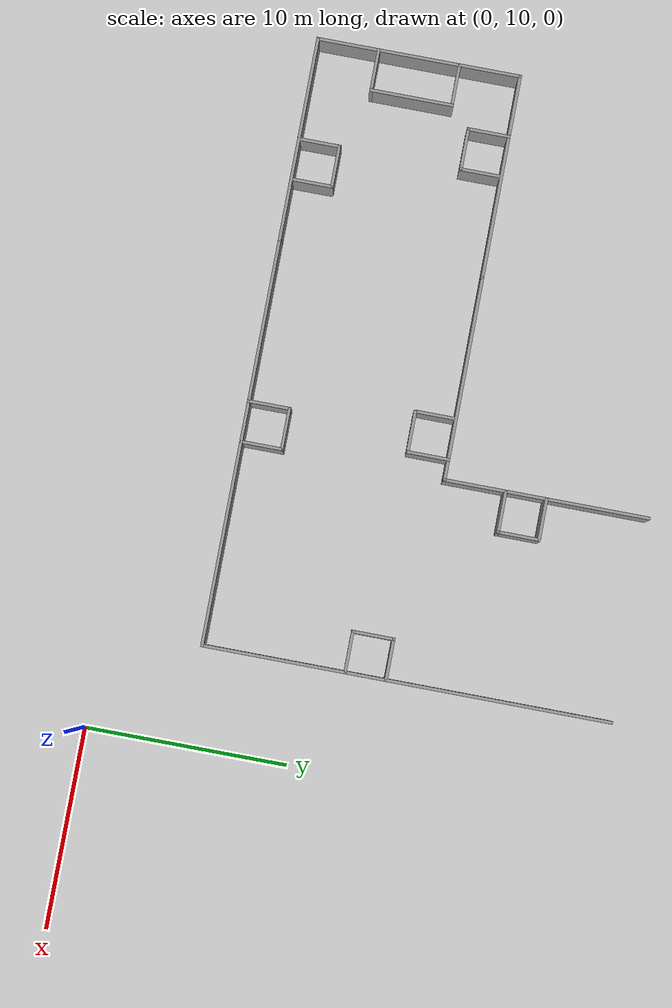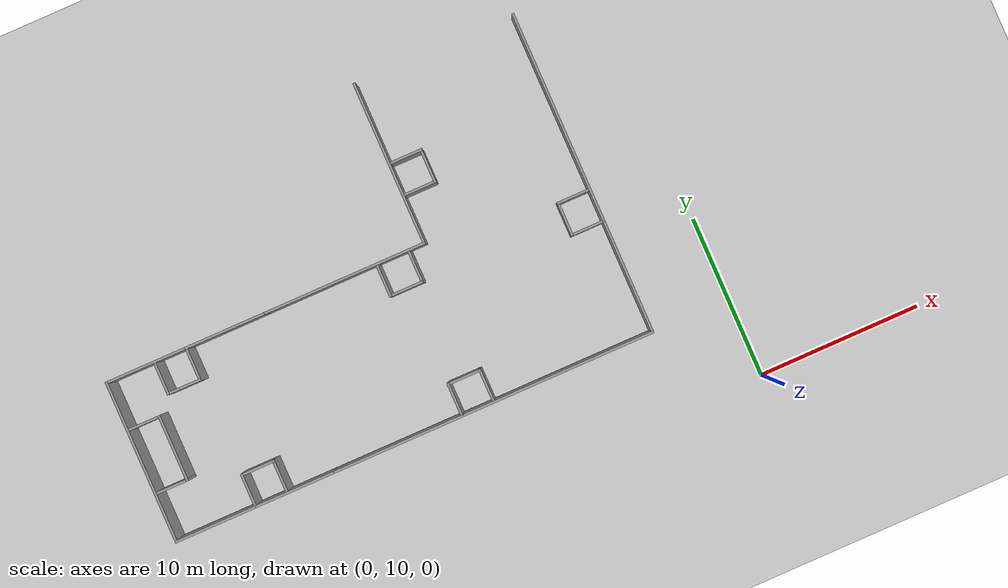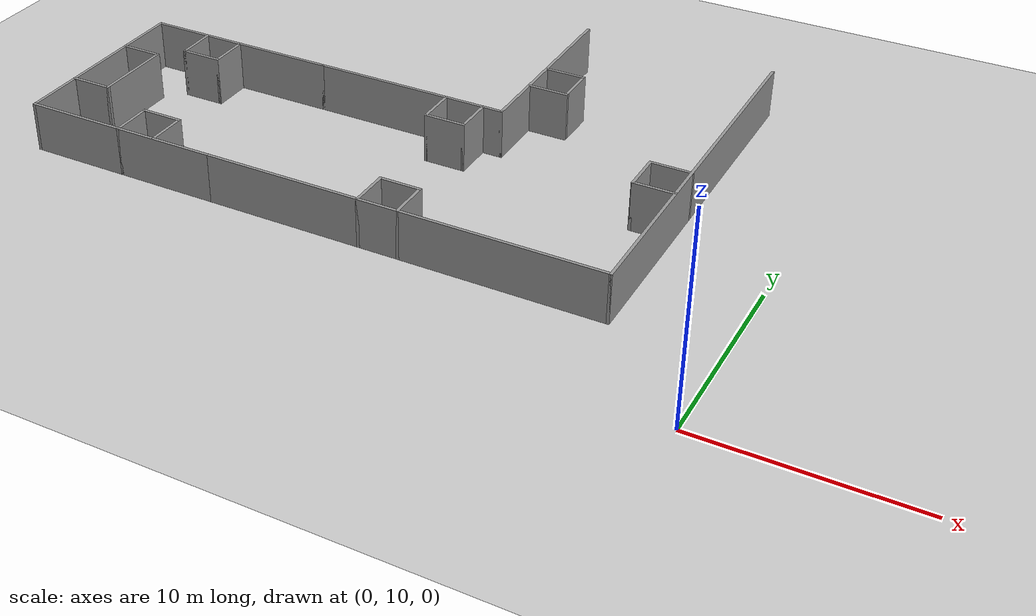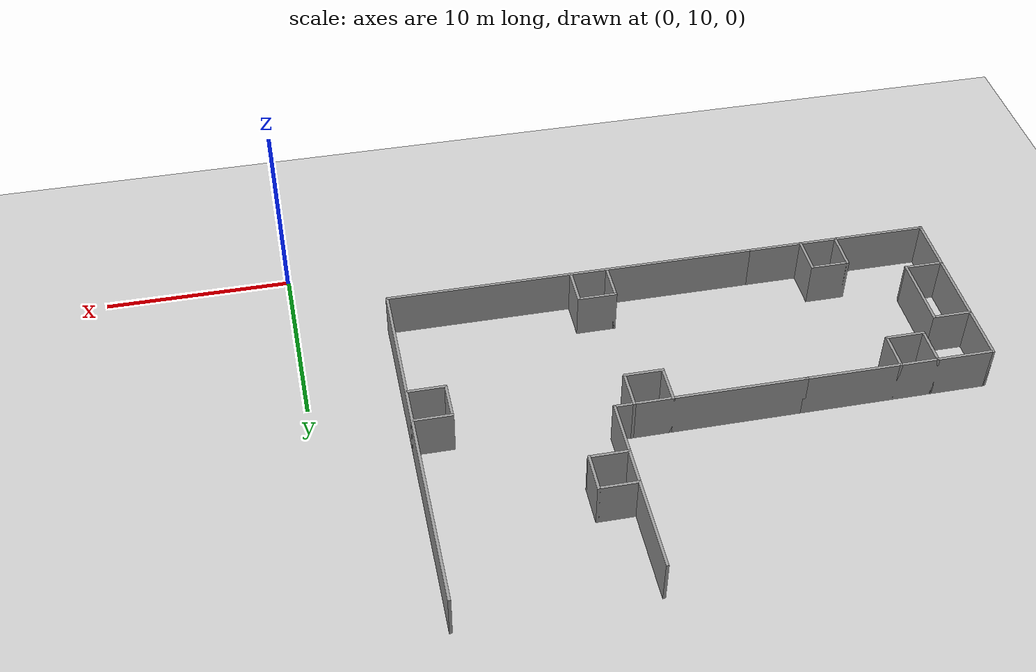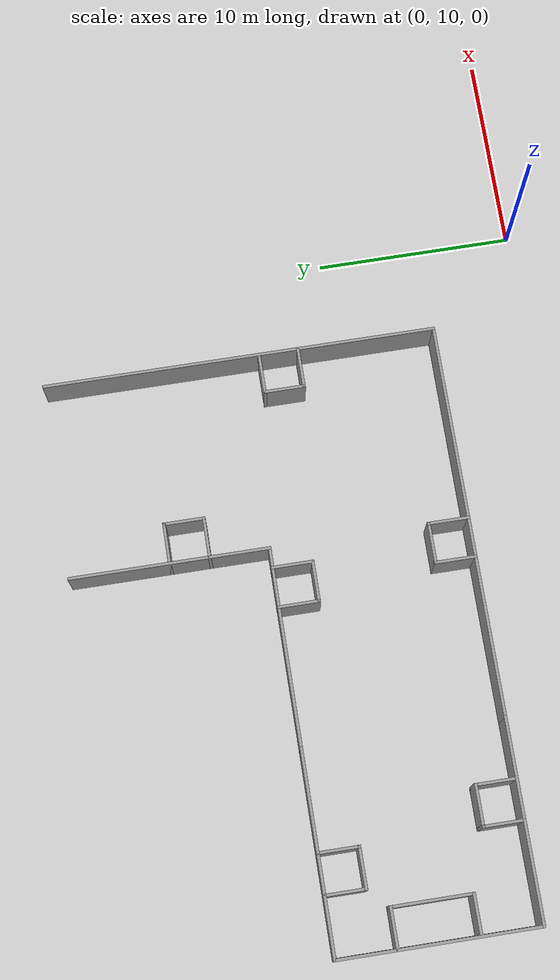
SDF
<sdf version="1.6">
 <world name="default">
  <model name="ground_plane">
   <static>1</static>
   <link name="link">
    <collision name="collision">
     <geometry><plane><normal>0 0 1</normal><size>100 100</size></plane></geometry>
     <surface><friction><ode><mu>100</mu><mu2>50</mu2></ode></friction></surface>
    </collision>
    <visual name="visual">
     <cast_shadows>0</cast_shadows>
     <geometry><plane><normal>0 0 1</normal><size>100 100</size></plane></geometry>
     <material>
      <script><uri>file://media/materials/scripts/gazebo.material</uri><name>Gazebo/Grey</name></script>
     </material>
    </visual>
   </link>
  </model>
  <model name="part_l_4">
   <link name="Wall_27">
    <pose>-0.000179 -10 0 0 -0 0</pose>
    <visual name="Wall_27_Visual">
     <pose>0 0 1.25 0 -0 0</pose>
     <geometry><box><size>20.15 0.15 2.5</size></box></geometry>
     <material>
      <script><uri>file://media/materials/scripts/gazebo.material</uri><name>Gazebo/Grey</name></script>
      <ambient>1 1 1 1</ambient>
      <diffuse>0.7 0.7 0.7 1</diffuse>
      <specular>0.01 0.01 0.01 1</specular>
      <emissive>0 0 0 1</emissive>
     </material>
    </visual>
    <collision name="Wall_27_Collision">
     <pose>0 0 1.25 0 -0 0</pose>
     <geometry><box><size>20.15 0.15 2.5</size></box></geometry>
     <surface>
      <friction>
       <ode><mu>1</mu><mu2>1</mu2><fdir1>0 0 0</fdir1><slip1>0</slip1><slip2>0</slip2></ode>
       <torsional>
        <coefficient>1</coefficient>
        <patch_radius>0</patch_radius>
        <surface_radius>0</surface_radius>
        <use_patch_radius>1</use_patch_radius>
        <ode><slip>0</slip></ode>
       </torsional>
      </friction>
      <bounce><restitution_coefficient>0</restitution_coefficient><threshold>1e+06</threshold></bounce>
      <contact>
       <collide_without_contact>0</collide_without_contact>
       <collide_without_contact_bitmask>1</collide_without_contact_bitmask>
       <collide_bitmask>1</collide_bitmask>
       <ode>
        <soft_cfm>0</soft_cfm>
        <soft_erp>0.2</soft_erp>
        <kp>1e+13</kp>
        <kd>1</kd>
        <max_vel>0.01</max_vel>
        <min_depth>0</min_depth>
       </ode>
       <bullet>
        <split_impulse>1</split_impulse>
        <split_impulse_penetration_threshold>-0.01</split_impulse_penetration_threshold>
        <soft_cfm>0</soft_cfm>
        <soft_erp>0.2</soft_erp>
        <kp>1e+13</kp>
        <kd>1</kd>
       </bullet>
      </contact>
     </surface>
    </collision>
   </link>
   <link name="Wall_28">
    <pose>9.99982 0 0 0 -0 1.5708</pose>
    <visual name="Wall_28_Visual">
     <pose>0 0 1.25 0 -0 0</pose>
     <geometry><box><size>20.15 0.15 2.5</size></box></geometry>
     <material>
      <script><uri>file://media/materials/scripts/gazebo.material</uri><name>Gazebo/Grey</name></script>
      <ambient>1 1 1 1</ambient>
      <diffuse>0.7 0.7 0.7 1</diffuse>
      <specular>0.01 0.01 0.01 1</specular>
      <emissive>0 0 0 1</emissive>
     </material>
    </visual>
    <collision name="Wall_28_Collision">
     <pose>0 0 1.25 0 -0 0</pose>
     <geometry><box><size>20.15 0.15 2.5</size></box></geometry>
     <surface>
      <friction>
       <ode><mu>1</mu><mu2>1</mu2><fdir1>0 0 0</fdir1><slip1>0</slip1><slip2>0</slip2></ode>
       <torsional>
        <coefficient>1</coefficient>
        <patch_radius>0</patch_radius>
        <surface_radius>0</surface_radius>
        <use_patch_radius>1</use_patch_radius>
        <ode><slip>0</slip></ode>
       </torsional>
      </friction>
      <bounce><restitution_coefficient>0</restitution_coefficient><threshold>1e+06</threshold></bounce>
      <contact>
       <collide_without_contact>0</collide_without_contact>
       <collide_without_contact_bitmask>1</collide_without_contact_bitmask>
       <collide_bitmask>1</collide_bitmask>
       <ode>
        <soft_cfm>0</soft_cfm>
        <soft_erp>0.2</soft_erp>
        <kp>1e+13</kp>
        <kd>1</kd>
        <max_vel>0.01</max_vel>
        <min_depth>0</min_depth>
       </ode>
       <bullet>
        <split_impulse>1</split_impulse>
        <split_impulse_penetration_threshold>-0.01</split_impulse_penetration_threshold>
        <soft_cfm>0</soft_cfm>
        <soft_erp>0.2</soft_erp>
        <kp>1e+13</kp>
        <kd>1</kd>
       </bullet>
      </contact>
     </surface>
    </collision>
   </link>
   <link name="Wall_30">
    <pose>-5.00018 0 0 0 -0 0</pose>
    <visual name="Wall_30_Visual">
     <pose>0 0 1.25 0 -0 0</pose>
     <geometry><box><size>10.15 0.15 2.5</size></box></geometry>
     <material>
      <script><uri>file://media/materials/scripts/gazebo.material</uri><name>Gazebo/Grey</name></script>
      <ambient>1 1 1 1</ambient>
      <diffuse>0.7 0.7 0.7 1</diffuse>
      <specular>0.01 0.01 0.01 1</specular>
      <emissive>0 0 0 1</emissive>
     </material>
    </visual>
    <collision name="Wall_30_Collision">
     <pose>0 0 1.25 0 -0 0</pose>
     <geometry><box><size>10.15 0.15 2.5</size></box></geometry>
     <surface>
      <friction>
       <ode><mu>1</mu><mu2>1</mu2><fdir1>0 0 0</fdir1><slip1>0</slip1><slip2>0</slip2></ode>
       <torsional>
        <coefficient>1</coefficient>
        <patch_radius>0</patch_radius>
        <surface_radius>0</surface_radius>
        <use_patch_radius>1</use_patch_radius>
        <ode><slip>0</slip></ode>
       </torsional>
      </friction>
      <bounce><restitution_coefficient>0</restitution_coefficient><threshold>1e+06</threshold></bounce>
      <contact>
       <collide_without_contact>0</collide_without_contact>
       <collide_without_contact_bitmask>1</collide_without_contact_bitmask>
       <collide_bitmask>1</collide_bitmask>
       <ode>
        <soft_cfm>0</soft_cfm>
        <soft_erp>0.2</soft_erp>
        <kp>1e+13</kp>
        <kd>1</kd>
        <max_vel>0.01</max_vel>
        <min_depth>0</min_depth>
       </ode>
       <bullet>
        <split_impulse>1</split_impulse>
        <split_impulse_penetration_threshold>-0.01</split_impulse_penetration_threshold>
        <soft_cfm>0</soft_cfm>
        <soft_erp>0.2</soft_erp>
        <kp>1e+13</kp>
        <kd>1</kd>
       </bullet>
      </contact>
     </surface>
    </collision>
   </link>
   <link name="Wall_31">
    <pose>-0.000179 5 0 0 -0 1.5708</pose>
    <visual name="Wall_31_Visual">
     <pose>0 0 1.25 0 -0 0</pose>
     <geometry><box><size>10.15 0.15 2.5</size></box></geometry>
     <material>
      <script><uri>file://media/materials/scripts/gazebo.material</uri><name>Gazebo/Grey</name></script>
      <ambient>1 1 1 1</ambient>
      <diffuse>0.7 0.7 0.7 1</diffuse>
      <specular>0.01 0.01 0.01 1</specular>
      <emissive>0 0 0 1</emissive>
     </material>
    </visual>
    <collision name="Wall_31_Collision">
     <pose>0 0 1.25 0 -0 0</pose>
     <geometry><box><size>10.15 0.15 2.5</size></box></geometry>
     <surface>
      <friction>
       <ode><mu>1</mu><mu2>1</mu2><fdir1>0 0 0</fdir1><slip1>0</slip1><slip2>0</slip2></ode>
       <torsional>
        <coefficient>1</coefficient>
        <patch_radius>0</patch_radius>
        <surface_radius>0</surface_radius>
        <use_patch_radius>1</use_patch_radius>
        <ode><slip>0</slip></ode>
       </torsional>
      </friction>
      <bounce><restitution_coefficient>0</restitution_coefficient><threshold>1e+06</threshold></bounce>
      <contact>
       <collide_without_contact>0</collide_without_contact>
       <collide_without_contact_bitmask>1</collide_without_contact_bitmask>
       <collide_bitmask>1</collide_bitmask>
       <ode>
        <soft_cfm>0</soft_cfm>
        <soft_erp>0.2</soft_erp>
        <kp>1e+13</kp>
        <kd>1</kd>
        <max_vel>0.01</max_vel>
        <min_depth>0</min_depth>
       </ode>
       <bullet>
        <split_impulse>1</split_impulse>
        <split_impulse_penetration_threshold>-0.01</split_impulse_penetration_threshold>
        <soft_cfm>0</soft_cfm>
        <soft_erp>0.2</soft_erp>
        <kp>1e+13</kp>
        <kd>1</kd>
       </bullet>
      </contact>
     </surface>
    </collision>
   </link>
   <link name="Wall_33">
    <pose>-2.00018 -9 0 0 -0 1.5708</pose>
    <visual name="Wall_33_Visual">
     <pose>0 0 1.25 0 -0 0</pose>
     <geometry><box><size>2.15 0.15 2.5</size></box></geometry>
     <material>
      <script><uri>file://media/materials/scripts/gazebo.material</uri><name>Gazebo/Grey</name></script>
      <ambient>1 1 1 1</ambient>
      <diffuse>0.7 0.7 0.7 1</diffuse>
      <specular>0.01 0.01 0.01 1</specular>
      <emissive>0 0 0 1</emissive>
     </material>
    </visual>
    <collision name="Wall_33_Collision">
     <pose>0 0 1.25 0 -0 0</pose>
     <geometry><box><size>2.15 0.15 2.5</size></box></geometry>
     <surface>
      <friction>
       <ode><mu>1</mu><mu2>1</mu2><fdir1>0 0 0</fdir1><slip1>0</slip1><slip2>0</slip2></ode>
       <torsional>
        <coefficient>1</coefficient>
        <patch_radius>0</patch_radius>
        <surface_radius>0</surface_radius>
        <use_patch_radius>1</use_patch_radius>
        <ode><slip>0</slip></ode>
       </torsional>
      </friction>
      <bounce><restitution_coefficient>0</restitution_coefficient><threshold>1e+06</threshold></bounce>
      <contact>
       <collide_without_contact>0</collide_without_contact>
       <collide_without_contact_bitmask>1</collide_without_contact_bitmask>
       <collide_bitmask>1</collide_bitmask>
       <ode>
        <soft_cfm>0</soft_cfm>
        <soft_erp>0.2</soft_erp>
        <kp>1e+13</kp>
        <kd>1</kd>
        <max_vel>0.01</max_vel>
        <min_depth>0</min_depth>
       </ode>
       <bullet>
        <split_impulse>1</split_impulse>
        <split_impulse_penetration_threshold>-0.01</split_impulse_penetration_threshold>
        <soft_cfm>0</soft_cfm>
        <soft_erp>0.2</soft_erp>
        <kp>1e+13</kp>
        <kd>1</kd>
       </bullet>
      </contact>
     </surface>
    </collision>
   </link>
   <link name="Wall_34">
    <pose>-1.00018 -8 0 0 -0 0</pose>
    <visual name="Wall_34_Visual">
     <pose>0 0 1.25 0 -0 0</pose>
     <geometry><box><size>2.15 0.15 2.5</size></box></geometry>
     <material>
      <script><uri>file://media/materials/scripts/gazebo.material</uri><name>Gazebo/Grey</name></script>
      <ambient>1 1 1 1</ambient>
      <diffuse>0.7 0.7 0.7 1</diffuse>
      <specular>0.01 0.01 0.01 1</specular>
      <emissive>0 0 0 1</emissive>
     </material>
    </visual>
    <collision name="Wall_34_Collision">
     <pose>0 0 1.25 0 -0 0</pose>
     <geometry><box><size>2.15 0.15 2.5</size></box></geometry>
     <surface>
      <friction>
       <ode><mu>1</mu><mu2>1</mu2><fdir1>0 0 0</fdir1><slip1>0</slip1><slip2>0</slip2></ode>
       <torsional>
        <coefficient>1</coefficient>
        <patch_radius>0</patch_radius>
        <surface_radius>0</surface_radius>
        <use_patch_radius>1</use_patch_radius>
        <ode><slip>0</slip></ode>
       </torsional>
      </friction>
      <bounce><restitution_coefficient>0</restitution_coefficient><threshold>1e+06</threshold></bounce>
      <contact>
       <collide_without_contact>0</collide_without_contact>
       <collide_without_contact_bitmask>1</collide_without_contact_bitmask>
       <collide_bitmask>1</collide_bitmask>
       <ode>
        <soft_cfm>0</soft_cfm>
        <soft_erp>0.2</soft_erp>
        <kp>1e+13</kp>
        <kd>1</kd>
        <max_vel>0.01</max_vel>
        <min_depth>0</min_depth>
       </ode>
       <bullet>
        <split_impulse>1</split_impulse>
        <split_impulse_penetration_threshold>-0.01</split_impulse_penetration_threshold>
        <soft_cfm>0</soft_cfm>
        <soft_erp>0.2</soft_erp>
        <kp>1e+13</kp>
        <kd>1</kd>
       </bullet>
      </contact>
     </surface>
    </collision>
   </link>
   <link name="Wall_35">
    <pose>-0.000179 -9 0 0 0 -1.5708</pose>
    <visual name="Wall_35_Visual">
     <pose>0 0 1.25 0 -0 0</pose>
     <geometry><box><size>2.15 0.15 2.5</size></box></geometry>
     <material>
      <script><uri>file://media/materials/scripts/gazebo.material</uri><name>Gazebo/Grey</name></script>
      <ambient>1 1 1 1</ambient>
      <diffuse>0.7 0.7 0.7 1</diffuse>
      <specular>0.01 0.01 0.01 1</specular>
      <emissive>0 0 0 1</emissive>
     </material>
    </visual>
    <collision name="Wall_35_Collision">
     <pose>0 0 1.25 0 -0 0</pose>
     <geometry><box><size>2.15 0.15 2.5</size></box></geometry>
     <surface>
      <friction>
       <ode><mu>1</mu><mu2>1</mu2><fdir1>0 0 0</fdir1><slip1>0</slip1><slip2>0</slip2></ode>
       <torsional>
        <coefficient>1</coefficient>
        <patch_radius>0</patch_radius>
        <surface_radius>0</surface_radius>
        <use_patch_radius>1</use_patch_radius>
        <ode><slip>0</slip></ode>
       </torsional>
      </friction>
      <bounce><restitution_coefficient>0</restitution_coefficient><threshold>1e+06</threshold></bounce>
      <contact>
       <collide_without_contact>0</collide_without_contact>
       <collide_without_contact_bitmask>1</collide_without_contact_bitmask>
       <collide_bitmask>1</collide_bitmask>
       <ode>
        <soft_cfm>0</soft_cfm>
        <soft_erp>0.2</soft_erp>
        <kp>1e+13</kp>
        <kd>1</kd>
        <max_vel>0.01</max_vel>
        <min_depth>0</min_depth>
       </ode>
       <bullet>
        <split_impulse>1</split_impulse>
        <split_impulse_penetration_threshold>-0.01</split_impulse_penetration_threshold>
        <soft_cfm>0</soft_cfm>
        <soft_erp>0.2</soft_erp>
        <kp>1e+13</kp>
        <kd>1</kd>
       </bullet>
      </contact>
     </surface>
    </collision>
   </link>
   <link name="Wall_37">
    <pose>8.99982 -1 0 0 -0 3.14159</pose>
    <visual name="Wall_37_Visual">
     <pose>0 0 1.25 0 -0 0</pose>
     <geometry><box><size>2.15072 0.15 2.5</size></box></geometry>
     <material>
      <script><uri>file://media/materials/scripts/gazebo.material</uri><name>Gazebo/Grey</name></script>
      <ambient>1 1 1 1</ambient>
      <diffuse>0.7 0.7 0.7 1</diffuse>
      <specular>0.01 0.01 0.01 1</specular>
      <emissive>0 0 0 1</emissive>
     </material>
    </visual>
    <collision name="Wall_37_Collision">
     <pose>0 0 1.25 0 -0 0</pose>
     <geometry><box><size>2.15072 0.15 2.5</size></box></geometry>
     <surface>
      <friction>
       <ode><mu>1</mu><mu2>1</mu2><fdir1>0 0 0</fdir1><slip1>0</slip1><slip2>0</slip2></ode>
       <torsional>
        <coefficient>1</coefficient>
        <patch_radius>0</patch_radius>
        <surface_radius>0</surface_radius>
        <use_patch_radius>1</use_patch_radius>
        <ode><slip>0</slip></ode>
       </torsional>
      </friction>
      <bounce><restitution_coefficient>0</restitution_coefficient><threshold>1e+06</threshold></bounce>
      <contact>
       <collide_without_contact>0</collide_without_contact>
       <collide_without_contact_bitmask>1</collide_without_contact_bitmask>
       <collide_bitmask>1</collide_bitmask>
       <ode>
        <soft_cfm>0</soft_cfm>
        <soft_erp>0.2</soft_erp>
        <kp>1e+13</kp>
        <kd>1</kd>
        <max_vel>0.01</max_vel>
        <min_depth>0</min_depth>
       </ode>
       <bullet>
        <split_impulse>1</split_impulse>
        <split_impulse_penetration_threshold>-0.01</split_impulse_penetration_threshold>
        <soft_cfm>0</soft_cfm>
        <soft_erp>0.2</soft_erp>
        <kp>1e+13</kp>
        <kd>1</kd>
       </bullet>
      </contact>
     </surface>
    </collision>
   </link>
   <link name="Wall_38">
    <pose>7.99982 -2 0 0 0 -1.5708</pose>
    <visual name="Wall_38_Visual">
     <pose>0 0 1.25 0 -0 0</pose>
     <geometry><box><size>2.15 0.15 2.5</size></box></geometry>
     <material>
      <script><uri>file://media/materials/scripts/gazebo.material</uri><name>Gazebo/Grey</name></script>
      <ambient>1 1 1 1</ambient>
      <diffuse>0.7 0.7 0.7 1</diffuse>
      <specular>0.01 0.01 0.01 1</specular>
      <emissive>0 0 0 1</emissive>
     </material>
    </visual>
    <collision name="Wall_38_Collision">
     <pose>0 0 1.25 0 -0 0</pose>
     <geometry><box><size>2.15 0.15 2.5</size></box></geometry>
     <surface>
      <friction>
       <ode><mu>1</mu><mu2>1</mu2><fdir1>0 0 0</fdir1><slip1>0</slip1><slip2>0</slip2></ode>
       <torsional>
        <coefficient>1</coefficient>
        <patch_radius>0</patch_radius>
        <surface_radius>0</surface_radius>
        <use_patch_radius>1</use_patch_radius>
        <ode><slip>0</slip></ode>
       </torsional>
      </friction>
      <bounce><restitution_coefficient>0</restitution_coefficient><threshold>1e+06</threshold></bounce>
      <contact>
       <collide_without_contact>0</collide_without_contact>
       <collide_without_contact_bitmask>1</collide_without_contact_bitmask>
       <collide_bitmask>1</collide_bitmask>
       <ode>
        <soft_cfm>0</soft_cfm>
        <soft_erp>0.2</soft_erp>
        <kp>1e+13</kp>
        <kd>1</kd>
        <max_vel>0.01</max_vel>
        <min_depth>0</min_depth>
       </ode>
       <bullet>
        <split_impulse>1</split_impulse>
        <split_impulse_penetration_threshold>-0.01</split_impulse_penetration_threshold>
        <soft_cfm>0</soft_cfm>
        <soft_erp>0.2</soft_erp>
        <kp>1e+13</kp>
        <kd>1</kd>
       </bullet>
      </contact>
     </surface>
    </collision>
   </link>
   <link name="Wall_39">
    <pose>8.99982 -3 0 0 -0 0</pose>
    <visual name="Wall_39_Visual">
     <pose>0 0 1.25 0 -0 0</pose>
     <geometry><box><size>2.15 0.15 2.5</size></box></geometry>
     <material>
      <script><uri>file://media/materials/scripts/gazebo.material</uri><name>Gazebo/Grey</name></script>
      <ambient>1 1 1 1</ambient>
      <diffuse>0.7 0.7 0.7 1</diffuse>
      <specular>0.01 0.01 0.01 1</specular>
      <emissive>0 0 0 1</emissive>
     </material>
    </visual>
    <collision name="Wall_39_Collision">
     <pose>0 0 1.25 0 -0 0</pose>
     <geometry><box><size>2.15 0.15 2.5</size></box></geometry>
     <surface>
      <friction>
       <ode><mu>1</mu><mu2>1</mu2><fdir1>0 0 0</fdir1><slip1>0</slip1><slip2>0</slip2></ode>
       <torsional>
        <coefficient>1</coefficient>
        <patch_radius>0</patch_radius>
        <surface_radius>0</surface_radius>
        <use_patch_radius>1</use_patch_radius>
        <ode><slip>0</slip></ode>
       </torsional>
      </friction>
      <bounce><restitution_coefficient>0</restitution_coefficient><threshold>1e+06</threshold></bounce>
      <contact>
       <collide_without_contact>0</collide_without_contact>
       <collide_without_contact_bitmask>1</collide_without_contact_bitmask>
       <collide_bitmask>1</collide_bitmask>
       <ode>
        <soft_cfm>0</soft_cfm>
        <soft_erp>0.2</soft_erp>
        <kp>1e+13</kp>
        <kd>1</kd>
        <max_vel>0.01</max_vel>
        <min_depth>0</min_depth>
       </ode>
       <bullet>
        <split_impulse>1</split_impulse>
        <split_impulse_penetration_threshold>-0.01</split_impulse_penetration_threshold>
        <soft_cfm>0</soft_cfm>
        <soft_erp>0.2</soft_erp>
        <kp>1e+13</kp>
        <kd>1</kd>
       </bullet>
      </contact>
     </surface>
    </collision>
   </link>
   <link name="Wall_41">
    <pose>0.999821 5 0 0 -0 0</pose>
    <visual name="Wall_41_Visual">
     <pose>0 0 1.25 0 -0 0</pose>
     <geometry><box><size>2.15 0.15 2.5</size></box></geometry>
     <material>
      <script><uri>file://media/materials/scripts/gazebo.material</uri><name>Gazebo/Grey</name></script>
      <ambient>1 1 1 1</ambient>
      <diffuse>0.7 0.7 0.7 1</diffuse>
      <specular>0.01 0.01 0.01 1</specular>
      <emissive>0 0 0 1</emissive>
     </material>
    </visual>
    <collision name="Wall_41_Collision">
     <pose>0 0 1.25 0 -0 0</pose>
     <geometry><box><size>2.15 0.15 2.5</size></box></geometry>
     <surface>
      <friction>
       <ode><mu>1</mu><mu2>1</mu2><fdir1>0 0 0</fdir1><slip1>0</slip1><slip2>0</slip2></ode>
       <torsional>
        <coefficient>1</coefficient>
        <patch_radius>0</patch_radius>
        <surface_radius>0</surface_radius>
        <use_patch_radius>1</use_patch_radius>
        <ode><slip>0</slip></ode>
       </torsional>
      </friction>
      <bounce><restitution_coefficient>0</restitution_coefficient><threshold>1e+06</threshold></bounce>
      <contact>
       <collide_without_contact>0</collide_without_contact>
       <collide_without_contact_bitmask>1</collide_without_contact_bitmask>
       <collide_bitmask>1</collide_bitmask>
       <ode>
        <soft_cfm>0</soft_cfm>
        <soft_erp>0.2</soft_erp>
        <kp>1e+13</kp>
        <kd>1</kd>
        <max_vel>0.01</max_vel>
        <min_depth>0</min_depth>
       </ode>
       <bullet>
        <split_impulse>1</split_impulse>
        <split_impulse_penetration_threshold>-0.01</split_impulse_penetration_threshold>
        <soft_cfm>0</soft_cfm>
        <soft_erp>0.2</soft_erp>
        <kp>1e+13</kp>
        <kd>1</kd>
       </bullet>
      </contact>
     </surface>
    </collision>
   </link>
   <link name="Wall_42">
    <pose>1.99982 4 0 0 0 -1.5708</pose>
    <visual name="Wall_42_Visual">
     <pose>0 0 1.25 0 -0 0</pose>
     <geometry><box><size>2.15 0.15 2.5</size></box></geometry>
     <material>
      <script><uri>file://media/materials/scripts/gazebo.material</uri><name>Gazebo/Grey</name></script>
      <ambient>1 1 1 1</ambient>
      <diffuse>0.7 0.7 0.7 1</diffuse>
      <specular>0.01 0.01 0.01 1</specular>
      <emissive>0 0 0 1</emissive>
     </material>
    </visual>
    <collision name="Wall_42_Collision">
     <pose>0 0 1.25 0 -0 0</pose>
     <geometry><box><size>2.15 0.15 2.5</size></box></geometry>
     <surface>
      <friction>
       <ode><mu>1</mu><mu2>1</mu2><fdir1>0 0 0</fdir1><slip1>0</slip1><slip2>0</slip2></ode>
       <torsional>
        <coefficient>1</coefficient>
        <patch_radius>0</patch_radius>
        <surface_radius>0</surface_radius>
        <use_patch_radius>1</use_patch_radius>
        <ode><slip>0</slip></ode>
       </torsional>
      </friction>
      <bounce><restitution_coefficient>0</restitution_coefficient><threshold>1e+06</threshold></bounce>
      <contact>
       <collide_without_contact>0</collide_without_contact>
       <collide_without_contact_bitmask>1</collide_without_contact_bitmask>
       <collide_bitmask>1</collide_bitmask>
       <ode>
        <soft_cfm>0</soft_cfm>
        <soft_erp>0.2</soft_erp>
        <kp>1e+13</kp>
        <kd>1</kd>
        <max_vel>0.01</max_vel>
        <min_depth>0</min_depth>
       </ode>
       <bullet>
        <split_impulse>1</split_impulse>
        <split_impulse_penetration_threshold>-0.01</split_impulse_penetration_threshold>
        <soft_cfm>0</soft_cfm>
        <soft_erp>0.2</soft_erp>
        <kp>1e+13</kp>
        <kd>1</kd>
       </bullet>
      </contact>
     </surface>
    </collision>
   </link>
   <link name="Wall_43">
    <pose>0.999821 3 0 0 -0 3.14159</pose>
    <visual name="Wall_43_Visual">
     <pose>0 0 1.25 0 -0 0</pose>
     <geometry><box><size>2.15 0.15 2.5</size></box></geometry>
     <material>
      <script><uri>file://media/materials/scripts/gazebo.material</uri><name>Gazebo/Grey</name></script>
      <ambient>1 1 1 1</ambient>
      <diffuse>0.7 0.7 0.7 1</diffuse>
      <specular>0.01 0.01 0.01 1</specular>
      <emissive>0 0 0 1</emissive>
     </material>
    </visual>
    <collision name="Wall_43_Collision">
     <pose>0 0 1.25 0 -0 0</pose>
     <geometry><box><size>2.15 0.15 2.5</size></box></geometry>
     <surface>
      <friction>
       <ode><mu>1</mu><mu2>1</mu2><fdir1>0 0 0</fdir1><slip1>0</slip1><slip2>0</slip2></ode>
       <torsional>
        <coefficient>1</coefficient>
        <patch_radius>0</patch_radius>
        <surface_radius>0</surface_radius>
        <use_patch_radius>1</use_patch_radius>
        <ode><slip>0</slip></ode>
       </torsional>
      </friction>
      <bounce><restitution_coefficient>0</restitution_coefficient><threshold>1e+06</threshold></bounce>
      <contact>
       <collide_without_contact>0</collide_without_contact>
       <collide_without_contact_bitmask>1</collide_without_contact_bitmask>
       <collide_bitmask>1</collide_bitmask>
       <ode>
        <soft_cfm>0</soft_cfm>
        <soft_erp>0.2</soft_erp>
        <kp>1e+13</kp>
        <kd>1</kd>
        <max_vel>0.01</max_vel>
        <min_depth>0</min_depth>
       </ode>
       <bullet>
        <split_impulse>1</split_impulse>
        <split_impulse_penetration_threshold>-0.01</split_impulse_penetration_threshold>
        <soft_cfm>0</soft_cfm>
        <soft_erp>0.2</soft_erp>
        <kp>1e+13</kp>
        <kd>1</kd>
       </bullet>
      </contact>
     </surface>
    </collision>
   </link>
   <link name="Wall_45">
    <pose>-3.00018 -1 0 0 0 -1.5708</pose>
    <visual name="Wall_45_Visual">
     <pose>0 0 1.25 0 -0 0</pose>
     <geometry><box><size>2.15 0.15 2.5</size></box></geometry>
     <material>
      <script><uri>file://media/materials/scripts/gazebo.material</uri><name>Gazebo/Grey</name></script>
      <ambient>1 1 1 1</ambient>
      <diffuse>0.7 0.7 0.7 1</diffuse>
      <specular>0.01 0.01 0.01 1</specular>
      <emissive>0 0 0 1</emissive>
     </material>
    </visual>
    <collision name="Wall_45_Collision">
     <pose>0 0 1.25 0 -0 0</pose>
     <geometry><box><size>2.15 0.15 2.5</size></box></geometry>
     <surface>
      <friction>
       <ode><mu>1</mu><mu2>1</mu2><fdir1>0 0 0</fdir1><slip1>0</slip1><slip2>0</slip2></ode>
       <torsional>
        <coefficient>1</coefficient>
        <patch_radius>0</patch_radius>
        <surface_radius>0</surface_radius>
        <use_patch_radius>1</use_patch_radius>
        <ode><slip>0</slip></ode>
       </torsional>
      </friction>
      <bounce><restitution_coefficient>0</restitution_coefficient><threshold>1e+06</threshold></bounce>
      <contact>
       <collide_without_contact>0</collide_without_contact>
       <collide_without_contact_bitmask>1</collide_without_contact_bitmask>
       <collide_bitmask>1</collide_bitmask>
       <ode>
        <soft_cfm>0</soft_cfm>
        <soft_erp>0.2</soft_erp>
        <kp>1e+13</kp>
        <kd>1</kd>
        <max_vel>0.01</max_vel>
        <min_depth>0</min_depth>
       </ode>
       <bullet>
        <split_impulse>1</split_impulse>
        <split_impulse_penetration_threshold>-0.01</split_impulse_penetration_threshold>
        <soft_cfm>0</soft_cfm>
        <soft_erp>0.2</soft_erp>
        <kp>1e+13</kp>
        <kd>1</kd>
       </bullet>
      </contact>
     </surface>
    </collision>
   </link>
   <link name="Wall_46">
    <pose>-2.00018 -2 0 0 -0 0</pose>
    <visual name="Wall_46_Visual">
     <pose>0 0 1.25 0 -0 0</pose>
     <geometry><box><size>2.15 0.15 2.5</size></box></geometry>
     <material>
      <script><uri>file://media/materials/scripts/gazebo.material</uri><name>Gazebo/Grey</name></script>
      <ambient>1 1 1 1</ambient>
      <diffuse>0.7 0.7 0.7 1</diffuse>
      <specular>0.01 0.01 0.01 1</specular>
      <emissive>0 0 0 1</emissive>
     </material>
    </visual>
    <collision name="Wall_46_Collision">
     <pose>0 0 1.25 0 -0 0</pose>
     <geometry><box><size>2.15 0.15 2.5</size></box></geometry>
     <surface>
      <friction>
       <ode><mu>1</mu><mu2>1</mu2><fdir1>0 0 0</fdir1><slip1>0</slip1><slip2>0</slip2></ode>
       <torsional>
        <coefficient>1</coefficient>
        <patch_radius>0</patch_radius>
        <surface_radius>0</surface_radius>
        <use_patch_radius>1</use_patch_radius>
        <ode><slip>0</slip></ode>
       </torsional>
      </friction>
      <bounce><restitution_coefficient>0</restitution_coefficient><threshold>1e+06</threshold></bounce>
      <contact>
       <collide_without_contact>0</collide_without_contact>
       <collide_without_contact_bitmask>1</collide_without_contact_bitmask>
       <collide_bitmask>1</collide_bitmask>
       <ode>
        <soft_cfm>0</soft_cfm>
        <soft_erp>0.2</soft_erp>
        <kp>1e+13</kp>
        <kd>1</kd>
        <max_vel>0.01</max_vel>
        <min_depth>0</min_depth>
       </ode>
       <bullet>
        <split_impulse>1</split_impulse>
        <split_impulse_penetration_threshold>-0.01</split_impulse_penetration_threshold>
        <soft_cfm>0</soft_cfm>
        <soft_erp>0.2</soft_erp>
        <kp>1e+13</kp>
        <kd>1</kd>
       </bullet>
      </contact>
     </surface>
    </collision>
   </link>
   <link name="Wall_47">
    <pose>-1.00018 -0.999 0 0 -0 1.5708</pose>
    <visual name="Wall_47_Visual">
     <pose>0 0 1.25 0 -0 0</pose>
     <geometry><box><size>2.152 0.15 2.5</size></box></geometry>
     <material>
      <script><uri>file://media/materials/scripts/gazebo.material</uri><name>Gazebo/Grey</name></script>
      <ambient>1 1 1 1</ambient>
      <diffuse>0.7 0.7 0.7 1</diffuse>
      <specular>0.01 0.01 0.01 1</specular>
      <emissive>0 0 0 1</emissive>
     </material>
    </visual>
    <collision name="Wall_47_Collision">
     <pose>0 0 1.25 0 -0 0</pose>
     <geometry><box><size>2.152 0.15 2.5</size></box></geometry>
     <surface>
      <friction>
       <ode><mu>1</mu><mu2>1</mu2><fdir1>0 0 0</fdir1><slip1>0</slip1><slip2>0</slip2></ode>
       <torsional>
        <coefficient>1</coefficient>
        <patch_radius>0</patch_radius>
        <surface_radius>0</surface_radius>
        <use_patch_radius>1</use_patch_radius>
        <ode><slip>0</slip></ode>
       </torsional>
      </friction>
      <bounce><restitution_coefficient>0</restitution_coefficient><threshold>1e+06</threshold></bounce>
      <contact>
       <collide_without_contact>0</collide_without_contact>
       <collide_without_contact_bitmask>1</collide_without_contact_bitmask>
       <collide_bitmask>1</collide_bitmask>
       <ode>
        <soft_cfm>0</soft_cfm>
        <soft_erp>0.2</soft_erp>
        <kp>1e+13</kp>
        <kd>1</kd>
        <max_vel>0.01</max_vel>
        <min_depth>0</min_depth>
       </ode>
       <bullet>
        <split_impulse>1</split_impulse>
        <split_impulse_penetration_threshold>-0.01</split_impulse_penetration_threshold>
        <soft_cfm>0</soft_cfm>
        <soft_erp>0.2</soft_erp>
        <kp>1e+13</kp>
        <kd>1</kd>
       </bullet>
      </contact>
     </surface>
    </collision>
   </link>
   <static>1</static>
   <pose>-15 25 0 0 -0 0</pose>
  </model>
  <model name="part_u_3">
   <pose>-30 20 0 0 -0 0</pose>
   <link name="Wall_78">
    <collision name="Wall_78_Collision">
     <geometry><box><size>10.15 0.15 2.5</size></box></geometry>
     <pose>0 0 1.25 0 -0 0</pose>
    </collision>
    <visual name="Wall_78_Visual">
     <pose>0 0 1.25 0 -0 0</pose>
     <geometry><box><size>10.15 0.15 2.5</size></box></geometry>
     <material>
      <script><uri>file://media/materials/scripts/gazebo.material</uri><name>Gazebo/Grey</name></script>
      <ambient>1 1 1 1</ambient>
     </material>
    </visual>
    <pose>0 -5 0 0 -0 3.14159</pose>
   </link>
   <link name="Wall_79">
    <collision name="Wall_79_Collision">
     <geometry><box><size>10.15 0.15 2.5</size></box></geometry>
     <pose>0 0 1.25 0 -0 0</pose>
    </collision>
    <visual name="Wall_79_Visual">
     <pose>0 0 1.25 0 -0 0</pose>
     <geometry><box><size>10.15 0.15 2.5</size></box></geometry>
     <material>
      <script><uri>file://media/materials/scripts/gazebo.material</uri><name>Gazebo/Grey</name></script>
      <ambient>1 1 1 1</ambient>
     </material>
    </visual>
    <pose>-5 0 0 0 -0 1.5708</pose>
   </link>
   <link name="Wall_80">
    <collision name="Wall_80_Collision">
     <geometry><box><size>10.15 0.15 2.5</size></box></geometry>
     <pose>0 0 1.25 0 -0 0</pose>
    </collision>
    <visual name="Wall_80_Visual">
     <pose>0 0 1.25 0 -0 0</pose>
     <geometry><box><size>10.15 0.15 2.5</size></box></geometry>
     <material>
      <script><uri>file://media/materials/scripts/gazebo.material</uri><name>Gazebo/Grey</name></script>
      <ambient>1 1 1 1</ambient>
     </material>
    </visual>
    <pose>0 5 0 0 -0 0</pose>
   </link>
   <link name="Wall_82">
    <collision name="Wall_82_Collision">
     <geometry><box><size>2.15 0.15 2.5</size></box></geometry>
     <pose>0 0 1.25 0 -0 0</pose>
    </collision>
    <visual name="Wall_82_Visual">
     <pose>0 0 1.25 0 -0 0</pose>
     <geometry><box><size>2.15 0.15 2.5</size></box></geometry>
     <material>
      <script><uri>file://media/materials/scripts/gazebo.material</uri><name>Gazebo/Grey</name></script>
      <ambient>1 1 1 1</ambient>
     </material>
    </visual>
    <pose>-4 2 0 0 -0 0</pose>
   </link>
   <link name="Wall_83">
    <collision name="Wall_83_Collision">
     <geometry><box><size>4.15 0.15 2.5</size></box></geometry>
     <pose>0 0 1.25 0 -0 0</pose>
    </collision>
    <visual name="Wall_83_Visual">
     <pose>0 0 1.25 0 -0 0</pose>
     <geometry><box><size>4.15 0.15 2.5</size></box></geometry>
     <material>
      <script><uri>file://media/materials/scripts/gazebo.material</uri><name>Gazebo/Grey</name></script>
      <ambient>1 1 1 1</ambient>
     </material>
    </visual>
    <pose>-3 0 0 0 0 -1.5708</pose>
   </link>
   <link name="Wall_84">
    <collision name="Wall_84_Collision">
     <geometry><box><size>2.15 0.15 2.5</size></box></geometry>
     <pose>0 0 1.25 0 -0 0</pose>
    </collision>
    <visual name="Wall_84_Visual">
     <pose>0 0 1.25 0 -0 0</pose>
     <geometry><box><size>2.15 0.15 2.5</size></box></geometry>
     <material>
      <script><uri>file://media/materials/scripts/gazebo.material</uri><name>Gazebo/Grey</name></script>
      <ambient>1 1 1 1</ambient>
     </material>
    </visual>
    <pose>-4 -2 0 0 -0 3.14159</pose>
   </link>
   <link name="Wall_86">
    <collision name="Wall_86_Collision">
     <geometry><box><size>2.15 0.15 2.5</size></box></geometry>
     <pose>0 0 1.25 0 -0 0</pose>
    </collision>
    <visual name="Wall_86_Visual">
     <pose>0 0 1.25 0 -0 0</pose>
     <geometry><box><size>2.15 0.15 2.5</size></box></geometry>
     <material>
      <script><uri>file://media/materials/scripts/gazebo.material</uri><name>Gazebo/Grey</name></script>
      <ambient>1 1 1 1</ambient>
     </material>
    </visual>
    <pose>-2 4 0 0 0 -1.5708</pose>
   </link>
   <link name="Wall_87">
    <collision name="Wall_87_Collision">
     <geometry><box><size>2.15 0.15 2.5</size></box></geometry>
     <pose>0 0 1.25 0 -0 0</pose>
    </collision>
    <visual name="Wall_87_Visual">
     <pose>0 0 1.25 0 -0 0</pose>
     <geometry><box><size>2.15 0.15 2.5</size></box></geometry>
     <material>
      <script><uri>file://media/materials/scripts/gazebo.material</uri><name>Gazebo/Grey</name></script>
      <ambient>1 1 1 1</ambient>
     </material>
    </visual>
    <pose>-1 3 0 0 -0 0</pose>
   </link>
   <link name="Wall_88">
    <collision name="Wall_88_Collision">
     <geometry><box><size>2.15 0.15 2.5</size></box></geometry>
     <pose>0 0 1.25 0 -0 0</pose>
    </collision>
    <visual name="Wall_88_Visual">
     <pose>0 0 1.25 0 -0 0</pose>
     <geometry><box><size>2.15 0.15 2.5</size></box></geometry>
     <material>
      <script><uri>file://media/materials/scripts/gazebo.material</uri><name>Gazebo/Grey</name></script>
      <ambient>1 1 1 1</ambient>
     </material>
    </visual>
    <pose>0 4 0 0 -0 1.5708</pose>
   </link>
   <link name="Wall_90">
    <collision name="Wall_90_Collision">
     <geometry><box><size>2.15 0.15 2.5</size></box></geometry>
     <pose>0 0 1.25 0 -0 0</pose>
    </collision>
    <visual name="Wall_90_Visual">
     <pose>0 0 1.25 0 -0 0</pose>
     <geometry><box><size>2.15 0.15 2.5</size></box></geometry>
     <material>
      <script><uri>file://media/materials/scripts/gazebo.material</uri><name>Gazebo/Grey</name></script>
      <ambient>1 1 1 1</ambient>
     </material>
    </visual>
    <pose>0 -4 0 0 -0 1.5708</pose>
   </link>
   <link name="Wall_91">
    <collision name="Wall_91_Collision">
     <geometry><box><size>2.15 0.15 2.5</size></box></geometry>
     <pose>0 0 1.25 0 -0 0</pose>
    </collision>
    <visual name="Wall_91_Visual">
     <pose>0 0 1.25 0 -0 0</pose>
     <geometry><box><size>2.15 0.15 2.5</size></box></geometry>
     <material>
      <script><uri>file://media/materials/scripts/gazebo.material</uri><name>Gazebo/Grey</name></script>
      <ambient>1 1 1 1</ambient>
     </material>
    </visual>
    <pose>1 -3 0 0 -0 0</pose>
   </link>
   <link name="Wall_92">
    <collision name="Wall_92_Collision">
     <geometry><box><size>2.15 0.15 2.5</size></box></geometry>
     <pose>0 0 1.25 0 -0 0</pose>
    </collision>
    <visual name="Wall_92_Visual">
     <pose>0 0 1.25 0 -0 0</pose>
     <geometry><box><size>2.15 0.15 2.5</size></box></geometry>
     <material>
      <script><uri>file://media/materials/scripts/gazebo.material</uri><name>Gazebo/Grey</name></script>
      <ambient>1 1 1 1</ambient>
     </material>
    </visual>
    <pose>2 -4 0 0 0 -1.5708</pose>
   </link>
   <static>1</static>
  </model>
 </world>
</sdf>
